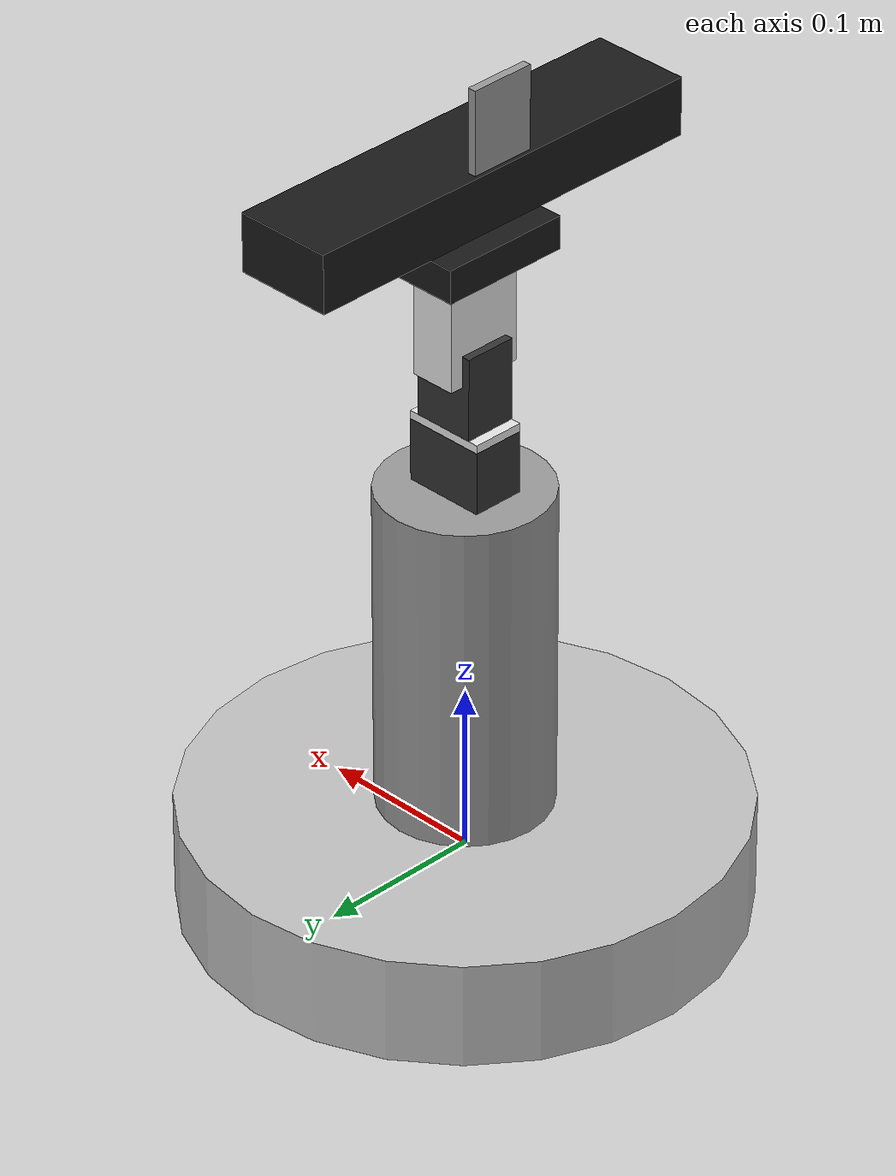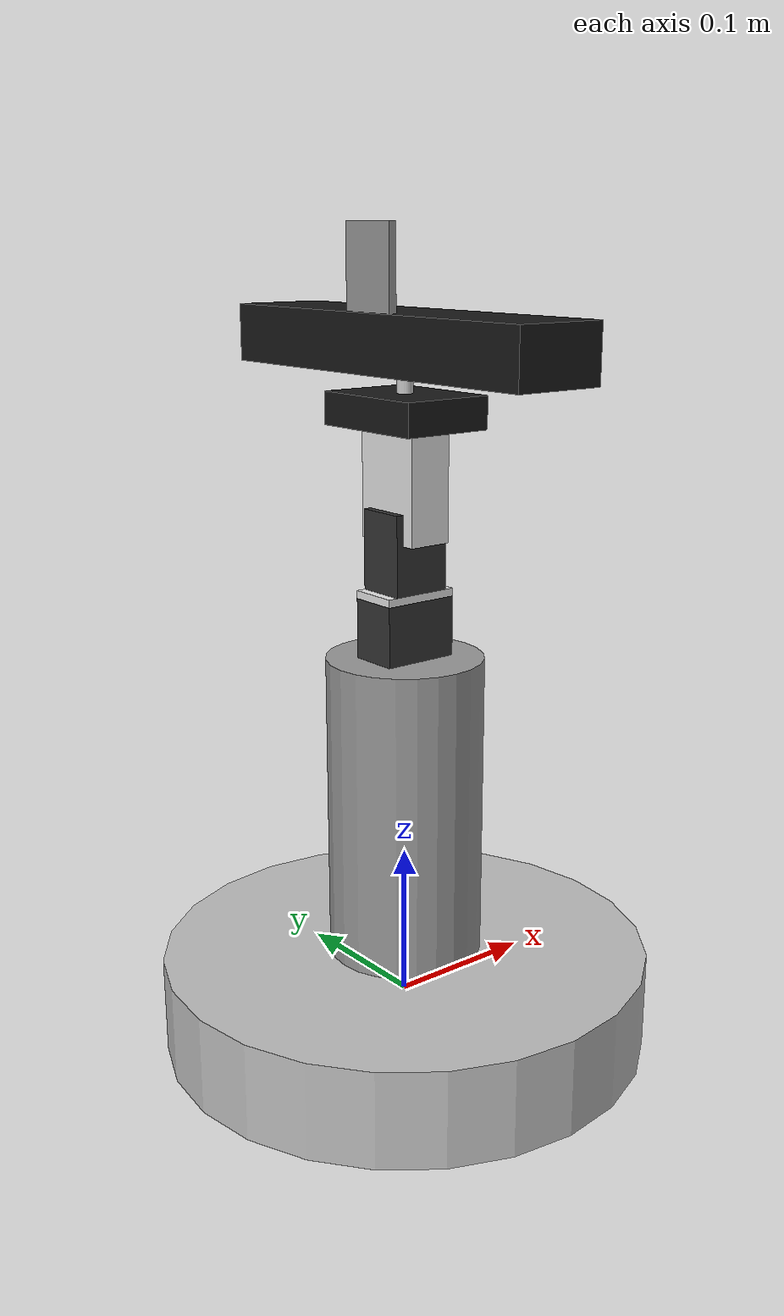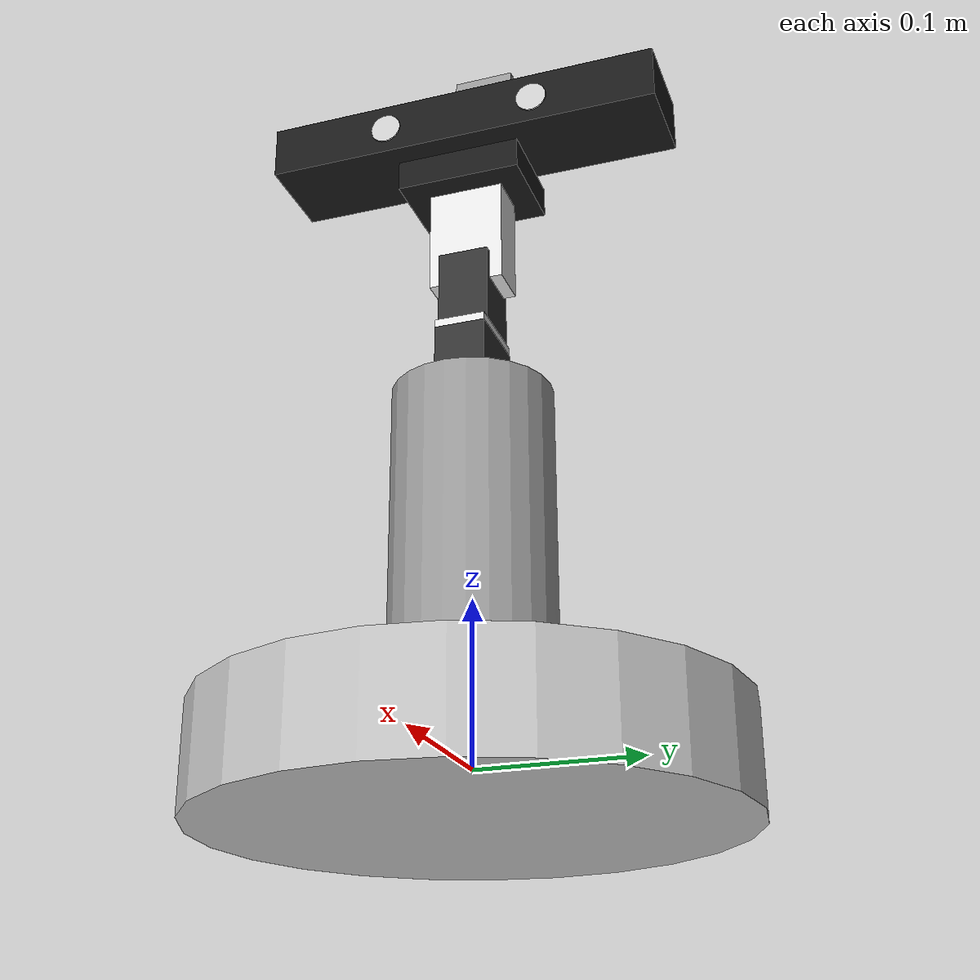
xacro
<?xml version="1.0"?>

<!-- XML namespaces -->
<robot xmlns:sensor="http://playerstage.sourceforge.net/gazebo/xmlschema/#sensor"
       xmlns:controller="http://playerstage.sourceforge.net/gazebo/xmlschema/#controller"
       xmlns:interface="http://playerstage.sourceforge.net/gazebo/xmlschema/#interface"
       xmlns:xacro="http://ros.org/wiki/xacro"
	   name="kinectbot">

    <property name="M_PI" value="3.14159"/>
    <property name="SCALE" value="0.0254"/>
    <property name="M_SCALE" value="0.001"/>

 	<!-- ============================  A Few Color Macros  ============================ -->

	<xacro:macro name="black">
		<material name="black">
			<color rgba="0.1 0.1 0.1 1.0"/>
		</material>
	</xacro:macro>

	<xacro:macro name="white">
		<material name="white">
			<color rgba="1.0 1.0 1.0 1.0"/>
		</material>
	</xacro:macro>

	<xacro:macro name="grey1">
		<material name="grey1">
			<color rgba="0.75 0.75 0.75 1.0"/>
		</material>
	</xacro:macro>

	<xacro:macro name="grey2">
		<material name="grey2">
			<color rgba="0.6 0.6 0.6 1.0"/>
		</material>
	</xacro:macro>

	<xacro:macro name="grey3">
		<material name="grey3">
			<color rgba="0.8 0.8 0.8 1.0"/>
		</material>
	</xacro:macro>

	<xacro:macro name="ax12_color">
		<material name="ax12_color">
			<color rgba="0.2 0.2 0.2 1.0"/>
		</material>
	</xacro:macro>

	<xacro:macro name="bracket_color">
		<material name="bracket_color">
			<color rgba="0.9 0.9 0.9 1.0"/>
		</material>
	</xacro:macro>

 	<!-- ============================   A Few Shape Macros  ============================ -->

	<xacro:macro name="ax12" params="name xyz rpy">
		<link name="${name}">
			<visual>
				<origin xyz="${xyz}" rpy="${rpy}" />
				<geometry>
					<box size="0.05 0.032 0.038" />
				</geometry>
				<xacro:ax12_color />
             </visual>
             <collision>
				<origin xyz="${xyz}" rpy="${rpy}" />
					<geometry>
						<box size="0.05 0.032 0.038" />
					</geometry>
             </collision>
             <xacro:default_inertial mass="0.055" />
        </link>
        <xacro:default_gazebo name="${name}" material="Gazebo/FlatBlack" />
	</xacro:macro>

	<xacro:macro name="bracket1" params="name xyz rpy">
		<link name="${name}">
			<visual>
				<origin xyz="${xyz}" rpy="${rpy}" />
				<geometry>
					<box size="0.05 0.025 0.038" />
				</geometry>
				<xacro:bracket_color />
             </visual>
             <collision>
				<origin xyz="${xyz}" rpy="${rpy}" />
					<geometry>
						<box size="0.05 0.025 0.038" />
					</geometry>
             </collision>
             <xacro:default_inertial mass="0.02" />
        </link>
        <xacro:default_gazebo name="${name}" material="Gazebo/WhiteEmissive" />
	</xacro:macro>

	<xacro:macro name="bracket2" params="name xyz rpy">
		<link name="${name}">
			<visual>
				<origin xyz="${xyz}" rpy="${rpy}" />
				<geometry>
					<box size="0.05 0.032 0.005" />
				</geometry>
				<xacro:bracket_color />
             </visual>
             <collision>
				<origin xyz="${xyz}" rpy="${rpy}" />
					<geometry>
					<box size="0.05 0.032 0.005" />
					</geometry>
             </collision>
             <xacro:default_inertial mass="0.01" />
        </link>
        <xacro:default_gazebo name="${name}" material="Gazebo/WhiteEmissive" />
	</xacro:macro>

	<xacro:macro name="my_box" params="name lwh xyz rpy mass material *rviz_color">
		<link name="${name}">
			<visual>
				<origin xyz="${xyz}" rpy="${rpy}" />
				<geometry>
					<box size="${lwh}" />
				</geometry>
			    <xacro:insert_block name="rviz_color" />
             </visual>
             <collision>
				<origin xyz="${xyz}" rpy="${rpy}" />
					<geometry>
						<box size="${lwh}" />
					</geometry>
             </collision>
             <xacro:default_inertial mass="${mass}" />
        </link>
        <xacro:default_gazebo name="${name}" material="${material}" />
	</xacro:macro>

	<xacro:macro name="my_cylinder" params="name l r xyz rpy mass material *rviz_color">
		<link name="${name}">
			<visual>
				<origin xyz="${xyz}" rpy="${rpy}" />
				<geometry>
					<cylinder length="${l}" radius="${r}" />
				</geometry>
            	<xacro:insert_block name="rviz_color" />
            </visual>
            <collision>
				<origin xyz="${xyz}" rpy="${rpy}" />
					<geometry>
						<cylinder length="${l}" radius="${r}" />
					</geometry>
            </collision>
            <xacro:default_inertial mass="${mass}" />
        </link>
        <xacro:default_gazebo name="${name}" material="${material}" />
	</xacro:macro>

    <xacro:macro name="default_inertial" params="mass">
		<inertial>
			<mass value="${mass}" />
			<inertia ixx="0.001" ixy="0.0" ixz="0.0"
                     iyy="0.001" iyz="0.0"
                     izz="0.001" />
			</inertial>
    </xacro:macro>

    <xacro:macro name="default_gazebo" params="name material">
 		<gazebo reference="${name}">
			<material>${material}</material>
			<selfCollide>false</selfCollide>
			<turnGravityOff>true</turnGravityOff>
		</gazebo>
    </xacro:macro>

 	<!-- ============================   Link Definitions  ============================ -->

	<xacro:my_cylinder name="base_link" l="0.065" r="0.16" xyz="0 0 0" rpy="0 0 0" mass="2.91" material="Gazebo/Grey">
		<xacro:grey1 />
	</xacro:my_cylinder>

	<xacro:my_cylinder name="torso_link" l="0.20" r="0.05" xyz="0 0 0" rpy="0 0 0" mass="0.250" material="Gazebo/WhiteEmissive">
		<xacro:grey2 />
	</xacro:my_cylinder>

	<xacro:ax12 name="head_pan_link" xyz="0 0 0" rpy="0 0 0">
	</xacro:ax12>

	<xacro:bracket2 name="pan_tilt_bracket" xyz="0 0 0" rpy="0 0 0">
	</xacro:bracket2>

	<xacro:ax12 name="head_tilt_link" xyz="0 0 0" rpy="0 1.57 0">
	</xacro:ax12>

	<xacro:my_box name="neck_link" lwh="0.028 0.048 0.068" xyz="0 0 0.02" rpy="0 0 0" mass="0.05" material="Gazebo/WhiteEmissive">
		<xacro:bracket_color />
	</xacro:my_box>

	<xacro:my_box name="head_base_link" lwh="0.06 0.08 0.02" xyz="0 0 0" rpy="0 0 0" mass="0.1" material="Gazebo/FlatBlack">
		<xacro:black />
	</xacro:my_box>

	<xacro:my_cylinder name="head_post_link" l="0.012" r="0.005" xyz="0 0 0" rpy="0 0 0" mass="0.1" material="Gazebo/WhiteEmissive">
		<xacro:grey3 />
	</xacro:my_cylinder>

	<xacro:my_box name="kinect_link" lwh="0.06 0.26 0.035" xyz="0 0 0" rpy="0 0 0" mass="0.8" material="Gazebo/FlatBlack">
		<xacro:black />
	</xacro:my_box>

    <joint name="kinect_depth_joint" type="fixed">
      <origin xyz="0 0.018 0" rpy="0 0 0" />
      <parent link="kinect_link" />
      <child link="kinect_depth_frame" />
    </joint>

    <link name="kinect_depth_frame">
      <inertial>
        <mass value="0.0001" />
        <origin xyz="0 0 0" />
        <inertia ixx="0.0001" ixy="0.0" ixz="0.0"
                 iyy="0.0001" iyz="0.0"
                 izz="0.0001" />
      </inertial>
    </link>

    <joint name="kinect_depth_optical_joint" type="fixed">
      <origin xyz="0 0 0" rpy="${-M_PI/2} 0 ${-M_PI/2}" />
      <parent link="kinect_depth_frame" />
      <child link="kinect_depth_optical_frame" />
    </joint>

    <link name="kinect_depth_optical_frame">
      <inertial>
        <mass value="0.0001" />
        <origin xyz="0 0 0" />
        <inertia ixx="0.0001" ixy="0.0" ixz="0.0"
                 iyy="0.0001" iyz="0.0"
                 izz="0.0001" />
      </inertial>
    </link>

    <joint name="kinect_rgb_joint" type="fixed">
      <origin xyz="0 -0.005 0" rpy="0 0 0" />
      <parent link="kinect_link" />
      <child link="kinect_rgb_frame" />
    </joint>

    <link name="kinect_rgb_frame">
      <inertial>
        <mass value="0.0001" />
        <origin xyz="0 0 0" />
        <inertia ixx="0.0001" ixy="0.0" ixz="0.0"
                 iyy="0.0001" iyz="0.0"
                 izz="0.0001" />
      </inertial>
    </link>

    <joint name="kinect_rgb_optical_joint" type="fixed">
      <origin xyz="0 0 0" rpy="${-M_PI/2} 0 ${-M_PI/2}" />
      <parent link="kinect_rgb_frame" />
      <child link="kinect_rgb_optical_frame" />
    </joint>

    <link name="kinect_rgb_optical_frame">
      <inertial>
        <mass value="0.0001" />
        <origin xyz="0 0 0" />
        <inertia ixx="0.0001" ixy="0.0" ixz="0.0"
                 iyy="0.0001" iyz="0.0"
                 izz="0.0001" />
      </inertial>
    </link>

	<xacro:my_cylinder name="left_eye_link" l="0.01" r="0.01" xyz="0 0 0" rpy="0 1.57 0" mass="0.001" material="Gazebo/WhiteEmissive">
		<xacro:grey3 />
	</xacro:my_cylinder>

	<xacro:my_cylinder name="right_eye_link" l="0.01" r="0.01" xyz="0 0 00" rpy="0 1.57 0" mass="0.001" material="Gazebo/WhiteEmissive">
		<xacro:grey3 />
	</xacro:my_cylinder>

	<xacro:my_box name="hair_link" lwh="0.005 0.04 0.05" xyz="0 0 0" rpy="0 0 0" mass="0.05" material="Gazebo/WhiteEmissive">
		<xacro:grey2 />
	</xacro:my_box>

	<!-- =================== Joint Definitions ==================== -->

	<joint name="torso_joint" type="fixed">
    	<parent link="base_link" />
    	<child link="torso_link" />
    	<origin xyz="0 0 0.1325" rpy="0 0 0" />
	</joint>

	<joint name="head_pan_servo" type="fixed">
    	<parent link="torso_link" />
    	<child link="head_pan_link" />
    	<origin xyz="0 0 0.119" rpy="0 0 0" />
	</joint>

	<joint name="pan_tilt_bracket" type="fixed">
    	<parent link="head_pan_link" />
    	<child link="pan_tilt_bracket" />
    	<origin xyz="0 0 0.0215" rpy="0 0 0" />
	</joint>

	<joint name="head_pan_joint" type="revolute">
    	<parent link="pan_tilt_bracket" />
    	<child link="head_tilt_link" />
    	<origin xyz="0 0 0.0275" rpy="0 0 0" />
    	<axis xyz="0 0 1" />
    	<limit lower="-3.1416" upper="3.1416" effort="10" velocity="3" />
      	<dynamics damping="0.0"/>
	</joint>

 	<joint name="head_tilt_joint" type="revolute">
    	<parent link="head_tilt_link" />
    	<child link="neck_link" />
    	<origin xyz="0 0 0.02" rpy="0 0 0" />
    	<axis xyz="0 -1 0" />
    	<limit lower="-1.57" upper="1.57" effort="10" velocity="3" />
      	<dynamics damping="0.0"/>
	</joint>

 	<joint name="neck_joint" type="fixed">
    	<parent link="neck_link" />
    	<child link="head_base_link" />
    	<origin xyz="0 0 0.064" rpy="0 0 0" />
	</joint>

	<joint name="head_base_joint" type="fixed">
    	<parent link="head_base_link" />
    	<child link="head_post_link" />
    	<origin xyz="0 0 0.016" rpy="0 0 0" />
	</joint>

	<joint name="kinect_joint" type="fixed">
    	<parent link="head_post_link" />
    	<child link="kinect_link" />
    	<origin xyz="0 0 0.0235" rpy="0 0 0" />
	</joint>

	<joint name="left_eye_joint" type="fixed">
    	<parent link="kinect_link" />
    	<child link="left_eye_link" />
    	<origin xyz="0.026 0.05 0" rpy="0 0 0" />
	</joint>

	<joint name="right_eye_joint" type="fixed">
    	<parent link="kinect_link" />
    	<child link="right_eye_link" />
    	<origin xyz="0.026 -0.05 0" rpy="0 0 0" />
	</joint>

	<joint name="hair_joint" type="fixed">
    	<parent link="kinect_link" />
    	<child link="hair_link" />
    	<origin xyz="-0.025 0 0.0425" rpy="0 0 0" />
	</joint>

	<gazebo reference="kinectbot">
  	</gazebo>
</robot>
